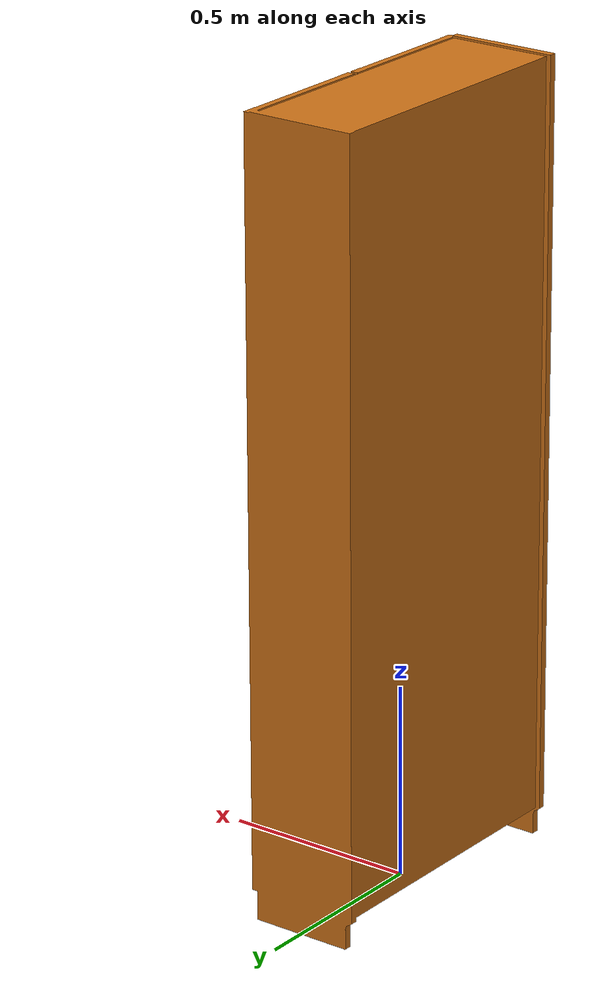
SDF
<?xml version="1.0" ?>
<sdf version="1.5">
  <model name="bookshelf">
    <static>true</static>
    <link name="bookshelf">
      <collision name="bookshelf">
        <pose>0 0 0 0 0 0</pose>
        <geometry>
          <mesh>
            <uri>model://bookshelf/meshes/model.dae</uri>
          </mesh>
        </geometry>
      </collision>

      <visual name="bookshelf">
      <cast_shadows>true</cast_shadows>
        <geometry>
          <mesh>
          <uri>model://bookshelf/meshes/model.dae</uri>
        </mesh>
        </geometry>
      </visual>
    </link>
  </model>
</sdf>
